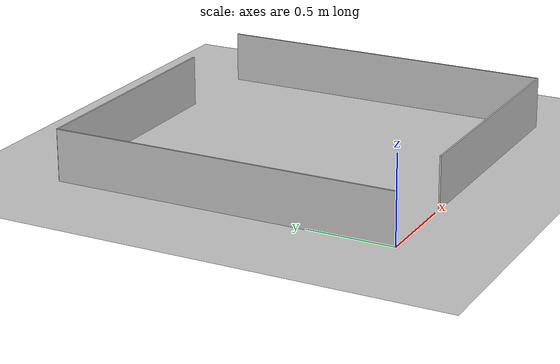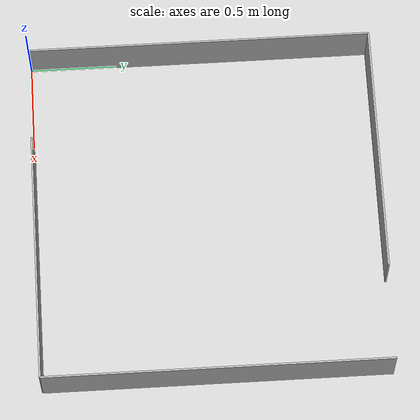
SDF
<sdf version="1.5">
 <world name="scenario_2_world">
  <include><uri>model://sun</uri></include>
  <include><uri>model://ground_plane</uri></include>
  <model name="wall_west"><include><uri>model://wall_1</uri></include></model>
  <model name="wall_east"><include><uri>model://wall_2</uri></include></model>
  <model name="wall_south"><include><uri>model://wall_3</uri></include></model>
  <model name="wall_north"><include><uri>model://wall_4</uri></include></model>
 </world>
</sdf>

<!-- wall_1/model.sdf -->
<sdf version="1.4">
  <model name="wall">
    <pose>0 1 0.15 0 0 0</pose>
    <static>true</static>
    <link name="link">
      <inertial>
        <mass>1.0</mass>
        <inertia> <!-- inertias are tricky to compute -->
          <!-- http://gazebosim.org/tutorials?tut=inertia&cat=build_robot -->
          <ixx>0.083</ixx>       <!-- for a box: ixx = 0.083 * mass * (y*y + z*z) -->
          <ixy>0.0</ixy>         <!-- for a box: ixy = 0 -->
          <ixz>0.0</ixz>         <!-- for a box: ixz = 0 -->
          <iyy>0.083</iyy>       <!-- for a box: iyy = 0.083 * mass * (x*x + z*z) -->
          <iyz>0.0</iyz>         <!-- for a box: iyz = 0 -->
          <izz>0.083</izz>       <!-- for a box: izz = 0.083 * mass * (x*x + y*y) -->
        </inertia>
      </inertial>
      <collision name="collision">
        <geometry>
          <box>
            <size> 0.01 2 0.3</size>
          </box>
        </geometry>
      </collision>
      <visual name="visual">
        <geometry>
          <box>
            <size>0.01 2 0.3</size>
          </box>
        </geometry>
      </visual>
    </link>
  </model>
</sdf>

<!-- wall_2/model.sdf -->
<sdf version="1.4">
  <model name="wall">
    <pose>2 1 0.15 0 0 0</pose>
    <static>true</static>
    <link name="link">
      <inertial>
        <mass>1.0</mass>
        <inertia> <!-- inertias are tricky to compute -->
          <!-- http://gazebosim.org/tutorials?tut=inertia&cat=build_robot -->
          <ixx>0.083</ixx>       <!-- for a box: ixx = 0.083 * mass * (y*y + z*z) -->
          <ixy>0.0</ixy>         <!-- for a box: ixy = 0 -->
          <ixz>0.0</ixz>         <!-- for a box: ixz = 0 -->
          <iyy>0.083</iyy>       <!-- for a box: iyy = 0.083 * mass * (x*x + z*z) -->
          <iyz>0.0</iyz>         <!-- for a box: iyz = 0 -->
          <izz>0.083</izz>       <!-- for a box: izz = 0.083 * mass * (x*x + y*y) -->
        </inertia>
      </inertial>
      <collision name="collision">
        <geometry>
          <box>
            <size> 0.01 2 0.3</size>
          </box>
        </geometry>
      </collision>
      <visual name="visual">
        <geometry>
          <box>
            <size>0.01 2 0.3</size>
          </box>
        </geometry>
      </visual>
    </link>
  </model>
</sdf>

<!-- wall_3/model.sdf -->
<sdf version="1.4">
  <model name="wall">
    <pose>1.275 0 0.15 0 0 0</pose>
    <static>true</static>
    <link name="link">
      <inertial>
        <mass>1.0</mass>
        <inertia> <!-- inertias are tricky to compute -->
          <!-- http://gazebosim.org/tutorials?tut=inertia&cat=build_robot -->
          <ixx>0.083</ixx>       <!-- for a box: ixx = 0.083 * mass * (y*y + z*z) -->
          <ixy>0.0</ixy>         <!-- for a box: ixy = 0 -->
          <ixz>0.0</ixz>         <!-- for a box: ixz = 0 -->
          <iyy>0.083</iyy>       <!-- for a box: iyy = 0.083 * mass * (x*x + z*z) -->
          <iyz>0.0</iyz>         <!-- for a box: iyz = 0 -->
          <izz>0.083</izz>       <!-- for a box: izz = 0.083 * mass * (x*x + y*y) -->
        </inertia>
      </inertial>
      <collision name="collision">
        <geometry>
          <box>
            <size>1.45 0.01 0.3</size>
          </box>
        </geometry>
      </collision>
      <visual name="visual">
        <geometry>
          <box>
            <size>1.45 0.01 0.3</size>
          </box>
        </geometry>
      </visual>
    </link>
  </model>
</sdf>

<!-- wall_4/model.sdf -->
<sdf version="1.4">
  <model name="wall">
    <pose>0.725 2 0.15 0 0 0</pose>
    <static>true</static>
    <link name="link">
      <inertial>
        <mass>1.0</mass>
        <inertia> <!-- inertias are tricky to compute -->
          <!-- http://gazebosim.org/tutorials?tut=inertia&cat=build_robot -->
          <ixx>0.083</ixx>       <!-- for a box: ixx = 0.083 * mass * (y*y + z*z) -->
          <ixy>0.0</ixy>         <!-- for a box: ixy = 0 -->
          <ixz>0.0</ixz>         <!-- for a box: ixz = 0 -->
          <iyy>0.083</iyy>       <!-- for a box: iyy = 0.083 * mass * (x*x + z*z) -->
          <iyz>0.0</iyz>         <!-- for a box: iyz = 0 -->
          <izz>0.083</izz>       <!-- for a box: izz = 0.083 * mass * (x*x + y*y) -->
        </inertia>
      </inertial>
      <collision name="collision">
        <geometry>
          <box>
            <size>1.45 0.01 0.3</size>
          </box>
        </geometry>
      </collision>
      <visual name="visual">
        <geometry>
          <box>
            <size>1.45 0.01 0.3</size>
          </box>
        </geometry>
      </visual>
    </link>
  </model>
</sdf>
